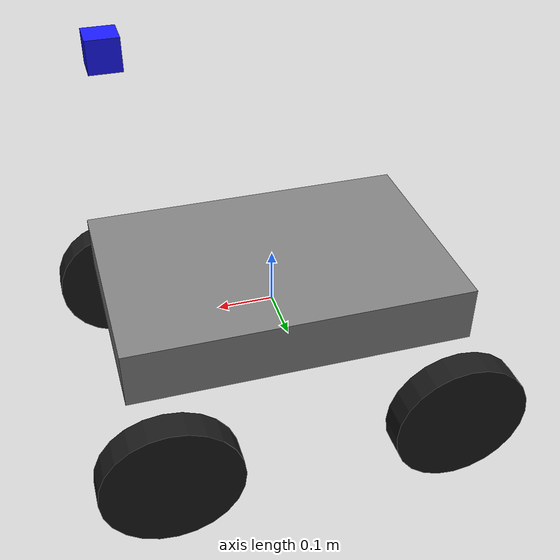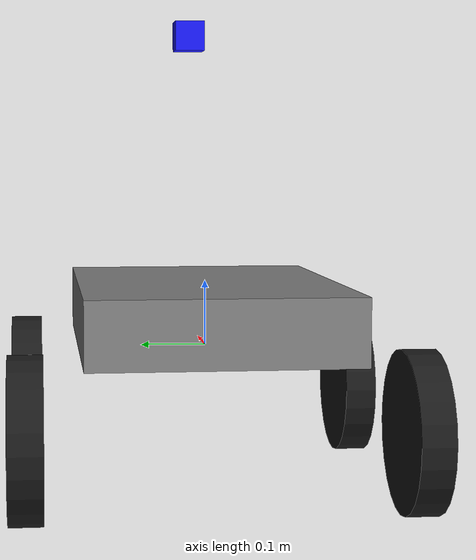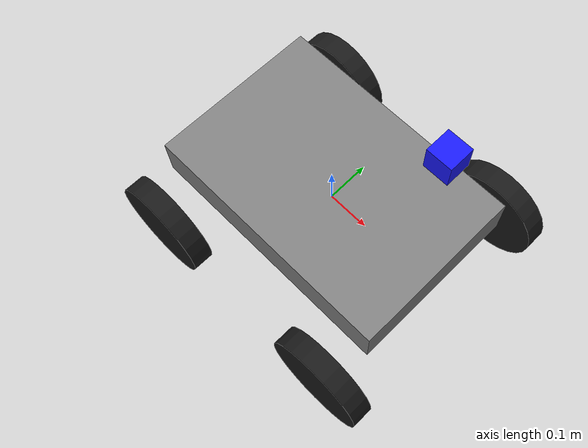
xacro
<?xml version="1.0"?>
<robot name="rover" xmlns:xacro="http://ros.org/wiki/xacro">

  <!-- ========== PROPERTIES ========== -->
  <xacro:property name="chassis_mass" value="15.0"/>
  <xacro:property name="wheel_mass" value="1.5"/>
  <xacro:property name="camera_mass" value="0.5"/>

  <xacro:property name="chassis_length" value="0.6"/>
  <xacro:property name="chassis_width"  value="0.4"/>
  <xacro:property name="chassis_height" value="0.1"/>

  <xacro:property name="wheel_radius" value="0.12"/>
  <xacro:property name="wheel_width"  value="0.05"/>

  <xacro:property name="wheel_offset_x" value="0.25"/> <!-- front/back -->
  <xacro:property name="wheel_offset_y" value="0.28"/> <!-- side spacing -->
  <xacro:property name="wheel_offset_z" value="-0.10"/> <!-- below chassis -->
  <xacro:property name="camera_offset_x" value="0.25"/>
  <xacro:property name="camera_offset_z" value="0.20"/>

  <!-- ========== CHASSIS LINK ========== -->
  <link name="base_link">
    <inertial>
      <origin xyz="0 0 0" rpy="0 0 0"/>
      <mass value="${chassis_mass}"/>
      <inertia ixx="0.5" iyy="0.5" izz="0.5" ixy="0" ixz="0" iyz="0"/>
    </inertial>

    <visual>
      <origin xyz="0 0 ${chassis_height/2}" rpy="0 0 0"/>
      <geometry>
        <box size="${chassis_length} ${chassis_width} ${chassis_height}"/>
      </geometry>
      <material name="gray"><color rgba="0.5 0.5 0.5 1"/></material>
    </visual>

    <collision>
      <origin xyz="0 0 ${chassis_height/2}" rpy="0 0 0"/>
      <geometry>
        <box size="${chassis_length} ${chassis_width} ${chassis_height}"/>
      </geometry>
    </collision>
  </link>

  <!-- ========== WHEEL MACRO ========== -->
  <xacro:macro name="wheel" params="name x y z">
    <link name="${name}">
      <inertial>
        <origin xyz="0 0 0" rpy="0 0 0"/>
        <mass value="${wheel_mass}"/>
        <inertia ixx="0.02" iyy="0.02" izz="0.02" ixy="0" ixz="0" iyz="0"/>
      </inertial>

      <visual>
        <!-- Cylinders in URDF default align along Z-axis; rotate to spin around Y -->
        <origin xyz="0 0 0" rpy="1.5708 0 0"/>
        <geometry>
          <cylinder radius="${wheel_radius}" length="${wheel_width}"/>
        </geometry>
        <material name="black"><color rgba="0.1 0.1 0.1 1"/></material>
      </visual>

      <collision>
        <origin xyz="0 0 0" rpy="1.5708 0 0"/>
        <geometry>
          <cylinder radius="${wheel_radius}" length="${wheel_width}"/>
        </geometry>
      </collision>
    </link>

    <joint name="${name}_joint" type="continuous">
      <parent link="base_link"/>
      <child link="${name}"/>
      <origin xyz="${x} ${y} ${z}" rpy="0 0 0"/>
      <axis xyz="0 1 0"/>
    </joint>
  </xacro:macro>

  <!-- ========== WHEEL INSTANCES ========== -->
  <xacro:wheel name="wheel_front_left"  x="${ wheel_offset_x}"  y="${ wheel_offset_y}"  z="${wheel_offset_z}"/>
  <xacro:wheel name="wheel_front_right" x="${ wheel_offset_x}"  y="${-wheel_offset_y}" z="${wheel_offset_z}"/>
  <xacro:wheel name="wheel_rear_left"   x="${-wheel_offset_x}" y="${ wheel_offset_y}"  z="${wheel_offset_z}"/>
  <xacro:wheel name="wheel_rear_right"  x="${-wheel_offset_x}" y="${-wheel_offset_y}" z="${wheel_offset_z}"/>

  <!-- ========== CAMERA LINK ========== -->
  <link name="camera_link">
    <inertial>
      <origin xyz="0 0 0" rpy="0 0 0"/>
      <mass value="${camera_mass}"/>
      <inertia ixx="0.01" iyy="0.01" izz="0.01" ixy="0.0" ixz="0.0" iyz="0.0"/>
    </inertial>

    <visual>
      <origin xyz="0 0 0.2" rpy="0 0 0"/>
      <geometry>
        <box size="0.05 0.05 0.05"/>
      </geometry>
      <material name="blue"><color rgba="0.1 0.1 1.0 1"/></material>
    </visual>

    <collision>
      <origin xyz="0 0 0" rpy="0 0 0"/>
      <geometry>
        <box size="0.05 0.05 0.05"/>
      </geometry>
    </collision>
  </link>

  <joint name="camera_joint" type="fixed">
    <parent link="base_link"/>
    <child link="camera_link"/>
    <origin xyz="${camera_offset_x} 0 ${chassis_height + camera_offset_z}" rpy="0 0 0"/>
  </joint>

  <!-- ========== GAZEBO MATERIALS & CAMERA ========== -->
  <gazebo reference="base_link">
    <material>Gazebo/Grey</material>
  </gazebo>
  <gazebo reference="wheel_front_left">
    <material>Gazebo/Black</material>
  </gazebo>

  <gazebo reference="wheel_front_right">
    <material>Gazebo/Black</material>
  </gazebo>

  <gazebo reference="wheel_rear_left">
    <material>Gazebo/Black</material>
  </gazebo>

  <gazebo reference="wheel_rear_right">
    <material>Gazebo/Black</material>
  </gazebo>

  <gazebo reference="camera_link">
  <sensor name="lidar" type="ray">
    <update_rate>10.0</update_rate>
    <ray>
      <scan>
        <horizontal>
          <samples>360</samples>
          <resolution>1</resolution>
          <min_angle>-3.14159</min_angle>
          <max_angle>3.14159</max_angle>
        </horizontal>
      </scan>
      <range>
        <min>0.12</min>
        <max>5.0</max>
        <resolution>0.01</resolution>
      </range>
    </ray>
    <plugin name="gazebo_ros_laser" filename="libgazebo_ros_ray_sensor.so"/>
  </sensor>
  </gazebo>

  <!-- ========== GAZEBO DIFFERENTIAL DRIVE PLUGIN (2-wheel drive) ========== -->
  <gazebo>
  <plugin name="diff_drive" filename="libgazebo_ros_diff_drive.so">
    <!-- Drive the rear wheels only -->
    <left_joint>wheel_rear_left_joint</left_joint>
    <right_joint>wheel_rear_right_joint</right_joint>

    <!-- Frames MUST match your system -->
    <odometry_frame>odom</odometry_frame>
    <robot_base_frame>base_link</robot_base_frame>

    <!-- These two lines are what create the TF -->
    <publish_odom>true</publish_odom>
    <publish_tf>true</publish_tf>

    <!-- Reasonable kinematics -->
    <wheel_separation>${2 * wheel_offset_y}</wheel_separation>
    <wheel_diameter>${2 * wheel_radius}</wheel_diameter>
    <max_wheel_torque>10.0</max_wheel_torque>
    <max_wheel_acceleration>2.0</max_wheel_acceleration>
    <update_rate>30</update_rate>

    <ros>
      <namespace>/</namespace>
      <remapping>cmd_vel:=/cmd_vel</remapping>
      <remapping>odom:=/odom</remapping>
    </ros>
  </plugin>
  </gazebo>

  <!-- Publish all joint states to /joint_states -->
  <gazebo>
  <plugin name="joint_state_publisher" filename="libgazebo_ros_joint_state_publisher.so">
    <ros>
      <namespace>/</namespace>
      <remapping>joint_states:=/joint_states</remapping>
    </ros>
    <joint_name>wheel_front_left_joint</joint_name>
    <joint_name>wheel_front_right_joint</joint_name>
    <joint_name>wheel_rear_left_joint</joint_name>
    <joint_name>wheel_rear_right_joint</joint_name>
  </plugin>
  </gazebo>

</robot>
